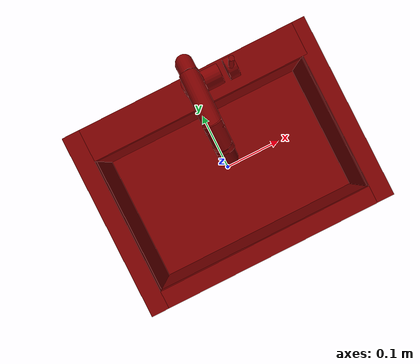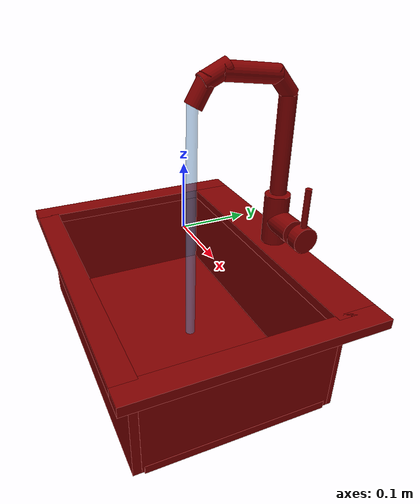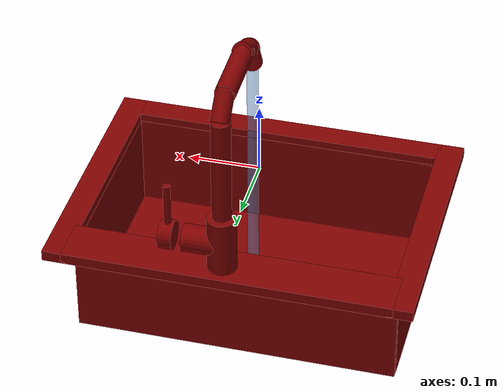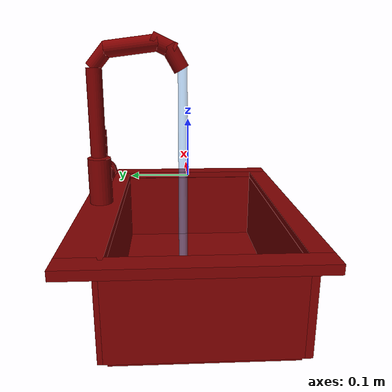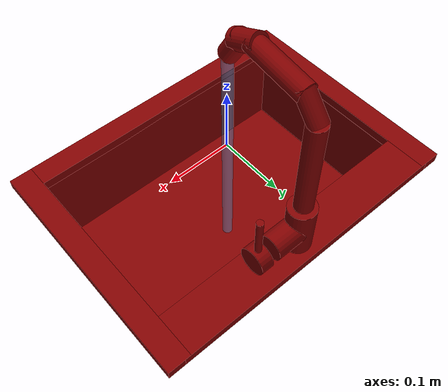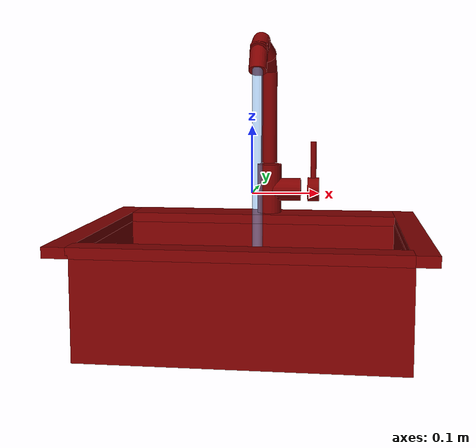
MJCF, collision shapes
<?xml version='1.0' encoding='UTF-8'?>
<mujoco model="model">
  <option timestep="0.002" gravity="0.0 0.0 -9.81"/>
  <compiler angle="radian"/>
  <asset>
    <mesh file="visuals/handle.obj" name="handle_vis"/>
    <mesh file="visuals/Body001.obj" name="Body001_vis"/>
    <mesh file="visuals/spout.obj" name="spout_vis"/>
    <texture file="visuals/T_BC001.png" name="Body001_material" type="2d"/>
    <material name="Body001_material" rgba="1 1 1 1.0" texture="Body001_material" shininess="0.1" specular="3"/>
    <texture file="visuals/T_BC001.png" name="handle_material" type="2d"/>
    <material name="handle_material" rgba="1 1 1 1.0" texture="handle_material" shininess="0.1" specular="3"/>
    <texture file="visuals/T_BC001.png" name="spout_material" type="2d"/>
    <material name="spout_material" rgba="1 1 1 1.0" texture="spout_material" shininess="0.1" specular="3"/>
  </asset>
  <default>
    <default class="visual">
      <geom conaffinity="0" contype="0" group="1" type="mesh"/>
    </default>
    <default class="collision">
      <geom group="0" rgba="0.5 0 0 0.5" solimp="0.998 0.998 0.001" solref="0.001 2"/>
    </default>
    <default class="spawn">
      <geom group="0" rgba="1 1 1 0.5" contype="0" conaffinity="0"/>
      <site group="0" rgba="1 1 1 0.5"/>
    </default>
    <default class="region">
      <geom group="1" conaffinity="0" contype="0" rgba="0 1 0 0"/>
    </default>
  </default>
  <worldbody>
    <body>
      <body name="object">
        <geom mesh="Body001_vis" type="mesh" solimp="0.998 0.998 0.001" solref="0.001 1" friction="0.95 0.3 0.1" class="visual" material="Body001_material"/>
        <geom class="collision" type="box" pos="-0.22370186 -0.01297073 -0.13942419" size="0.0030769745353609324 0.14365696907043457 0.07520347088575363" quat="1.0 0.0 0.0 0.0"/>
        <geom class="collision" type="box" pos="0.22353817 -0.01297073 -0.13942419" size="0.004052217584103346 0.14365696907043457 0.07520347088575363" quat="1.0 0.0 0.0 0.0"/>
        <geom class="collision" type="box" pos="0.00052068 -0.16089737 -0.13942419" size="0.22694265842437744 0.008095183409750462 0.07520347088575363" quat="1.0 0.0 0.0 0.0"/>
        <geom class="collision" type="box" pos="0.00052068 0.13065380 -0.13942419" size="0.22694265842437744 0.007858645170927048 0.07520347088575363" quat="1.0 0.0 0.0 0.0"/>
        <geom class="collision" type="box" pos="0.00104106 -0.01458936 -0.21025735" size="0.2276076376438141 0.1383713185787201 0.006834566127508879" quat="1.0 0.0 0.0 0.0"/>
        <geom class="collision" type="box" pos="0.00021407 0.15526815 -0.05972812" size="0.22942407429218292 0.033051520586013794 0.0076792286708951" quat="1.0 0.0 0.0 0.0"/>
        <geom class="collision" type="box" pos="-0.23806421 0.00000152 -0.05972812" size="0.017874063923954964 0.18831804394721985 0.007679254747927189" quat="1.0 0.0 0.0 0.0"/>
        <geom class="collision" type="box" pos="0.23828895 0.00000155 -0.05972812" size="0.017648139968514442 0.18831808865070343 0.007679241709411144" quat="1.0 0.0 0.0 0.0"/>
        <geom class="collision" type="box" pos="0.00066572 -0.17055937 -0.05972812" size="0.22415614128112793 0.017757192254066467 0.0076792421750724316" quat="1.0 0.0 0.0 0.0"/>
        <geom class="collision" type="cylinder" pos="0.01099786 0.15715011 -0.01293133" size="0.020531006157398224 0.043195951730012894" quat="1.0 -8.146032826061855e-08 0.0 0.0"/>
        <geom class="collision" type="cylinder" pos="0.03755776 0.15715011 -0.01293133" size="0.019330136477947235 0.02658579871058464" quat="0.7071068286895752 -1.5454311608209537e-08 0.7071067690849304 1.5454309831852697e-08"/>
        <geom class="collision" type="cylinder" pos="0.00005492 0.04247664 -0.22765857" size="0.041211847215890884 0.01047203317284584" quat="1.0 0.0 0.0 0.0"/>
        <body name="handle">
          <joint axis="1.0 0.0 0.0" pos="0.08124840 0.15679020 -0.01260636" limited="true" name="handle_temp_joint" type="hinge" range="-0.7853981633974483 0.7853981633974483" damping="0.5" frictionloss="1" armature="2"/>
          <joint axis="0.0 1.0 0.0" pos="0.08124840 0.15679020 -0.01260636" limited="true" name="handle_joint" type="hinge" range="0 0.5" damping="0.5" frictionloss="1" armature="2"/>
          <geom mesh="handle_vis" type="mesh" solimp="0.998 0.998 0.001" solref="0.001 1" friction="0.95 0.3 0.1" class="visual" material="handle_material"/>
          <geom class="collision" type="cylinder" pos="0.08606666 0.15715011 -0.01222685" size="0.020337821915745735 0.009487312287092209" quat="0.7071068286895752 -1.5454311608209537e-08 0.7071067690849304 1.5454309831852697e-08"/>
          <geom name="handle_main" class="collision" type="cylinder" pos="0.08584638 0.15715009 0.03725621" size="0.00495106540620327 0.031458549201488495" quat="9.099629210140847e-07 4.371146999915254e-08 -8.14603211551912e-08 -1.0"/>
        </body>
        <body name="spout">
          <joint axis="0.0 0.0 1.0" pos="0.01050470 0.15753365 0.13018970" limited="true" name="spout_joint" range="-0.7853981633974483 0.7853981633974483" type="hinge" damping="10"/>
          <site type="cylinder" rgba="0.5 0.75 1 0.5" size="0.008058087900280952 0.20167091488838196" pos="0.00688797 0.00886206 -0.01290043" name="water"/>
          <geom mesh="spout_vis" type="mesh" solimp="0.998 0.998 0.001" solref="0.001 1" friction="0.95 0.3 0.1" class="visual" material="spout_material"/>
          <geom class="collision" type="cylinder" pos="0.01048973 0.15755093 0.10893022" size="0.01348385401070118 0.0760563388466835" quat="1.0 0.0 0.0 0.0" name="spout_main"/>
          <geom class="collision" type="cylinder" pos="0.01058588 0.14599571 0.20155093" size="0.012817899696528912 0.0224286075681448" quat="0.9396012425422668 0.34198689460754395 -0.004769474267959595 -0.013104013167321682"/>
          <geom class="collision" type="cylinder" pos="0.00858321 0.09358337 0.21933845" size="0.01414923183619976 0.04494063928723335" quat="0.7500154972076416 0.6612758040428162 -0.01036915834993124 -0.009142313152551651"/>
          <geom class="collision" type="cylinder" pos="0.00678419 0.02141563 0.20039377" size="0.013681190088391304 0.022014377638697624" quat="0.9656696915626526 -0.25977304577827454 0.0 0.0"/>
          <geom class="collision" type="cylinder" pos="0.00743583 0.04168981 0.22042586" size="0.01379110012203455 0.022191235795617104" quat="0.8438840508460999 -0.5365256071090698 0.0 0.0"/>
        </body>
        <geom class="region" name="reg_basin" type="box" pos="-0.0003302550000000015 -0.015177239999999995 -0.13795961" size="0.215540635 0.13314206 0.06636233999999999"/>
        <geom class="region" name="reg_main" type="box" pos="-1.849999999858909e-07 1.544999999991692e-06 -0.145089745" size="0.256938055 0.189318075 0.094040855"/>
      </body>
    </body>
  </worldbody>
  <actuator>
    <motor name="handle_joint_actuator" joint="handle_joint" gear="10"/>
    <motor name="handle_temp_joint_actuator" joint="handle_temp_joint" gear="10"/>
    <motor name="spout_joint_actuator" joint="spout_joint" gear="10"/>
  </actuator>
</mujoco>
